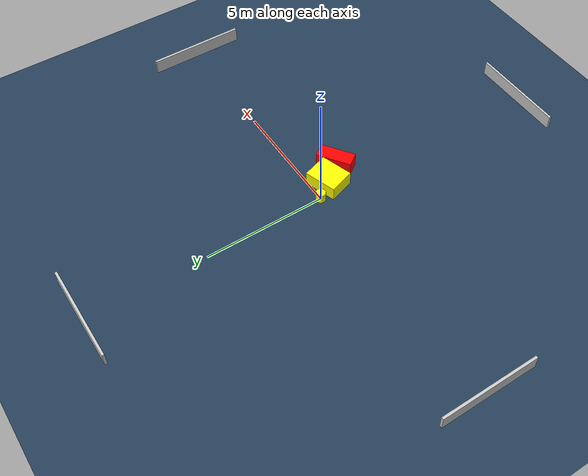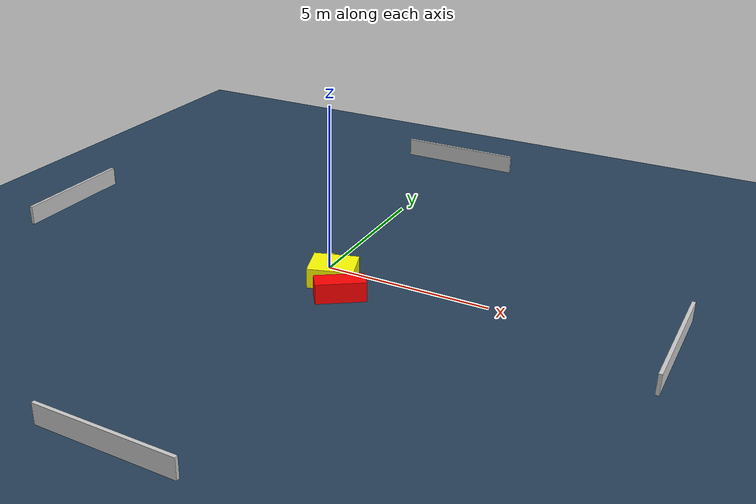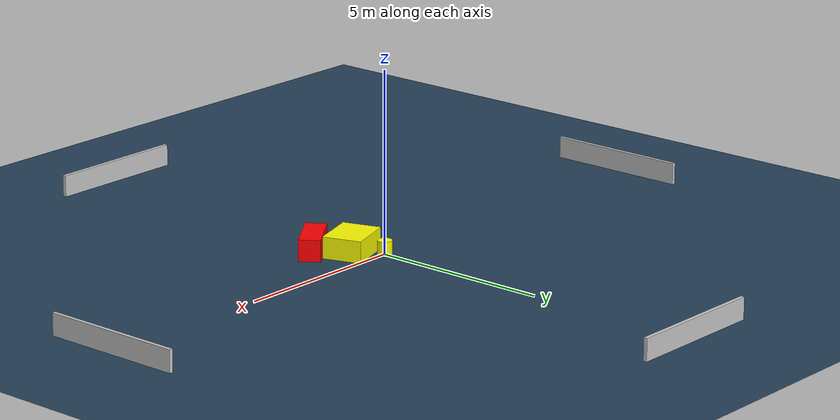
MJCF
<?xml version="1.0" ?>
<mujoco model="generated_environment">
  <option timestep="0.01" integrator="RK4" cone="elliptic"/>
  <default>
    <geom density="1"/>
  </default>
  <asset>
    <texture builtin="gradient" height="3072" name="skybox" rgb1="0.3 0.5 0.7" rgb2="0 0 0" type="skybox" width="512"/>
    <texture builtin="checker" height="300" name="groundplane" rgb1="0.2 0.3 0.4" rgb2="0.1 0.2 0.3" type="2d" width="300"/>
    <material name="groundplane" reflectance="0.2" texrepeat="5 5" texture="groundplane"/>
  </asset>
  <worldbody>
    <light dir="0 0 -1" directional="true" pos="0 0 1.5"/>
    <geom condim="3" friction="0.5 0.005 0.001" material="groundplane" name="floor" pos="0 0 0" size="0 0 0.05" type="plane"/>
    <body name="walls">
      <geom name="wall_1" condim="4" pos="-10.0 0.0 0.3" rgba="0.800000011920929 0.800000011920929 0.800000011920929 1.0" size="0.05 2.0 0.3" type="box"/>
      <geom name="wall_2" condim="4" pos="10.0 0.0 0.3" rgba="0.800000011920929 0.800000011920929 0.800000011920929 1.0" size="0.05 2.0 0.3" type="box"/>
      <geom name="wall_3" condim="4" pos="0.0 -10.0 0.3" rgba="0.800000011920929 0.800000011920929 0.800000011920929 1.0" size="2.0 0.05 0.3" type="box"/>
      <geom name="wall_4" condim="4" pos="0.0 10.0 0.3" rgba="0.800000011920929 0.800000011920929 0.800000011920929 1.0" size="2.0 0.05 0.3" type="box"/>
    </body>
    <body name="robot">
      <joint name="joint_x" type="slide" pos="0 0 0" axis="1 0 0"/>
      <joint name="joint_y" type="slide" pos="0 0 0" axis="0 1 0"/>
      <geom name="robot" type="cylinder" pos="0.0 0.0 0.2" size="0.2 0.2 0.0" mass="5.0" friction="1.0 0.005 0.0001" condim="4" rgba="1.0 1.0 0.0 1.0"/>
    </body>
    <body name="obstacle_1_movable">
      <geom name="obstacle_1_movable" condim="4" pos="0.5138340111594984 -0.6990264949307367 0.3" euler="0 0 198.1081524995785" friction="0.0 0.005 0.001" rgba="1.0 1.0 0.0 1.0" size="0.6729084079715746 0.5414221951169329 0.3" type="box" mass="0.1"/>
      <joint type="free"/>
    </body>
    <body name="obstacle_2_static">
      <geom name="obstacle_2_static" condim="4" pos="1.1621000293251116 -1.4892988599099604 0.3" euler="0 0 215.25796803004533" friction="0.0 0.005 0.001" rgba="1.0 0.0 0.0 1.0" size="0.7257549216361496 0.29667221594814097 0.3" type="box"/>
    </body>
  </worldbody>
  <actuator>
    <motor name="actuator_x" joint="joint_x" gear="1" ctrlrange="-1 1"/>
    <motor name="actuator_y" joint="joint_y" gear="1" ctrlrange="-1 1"/>
  </actuator>
</mujoco>
